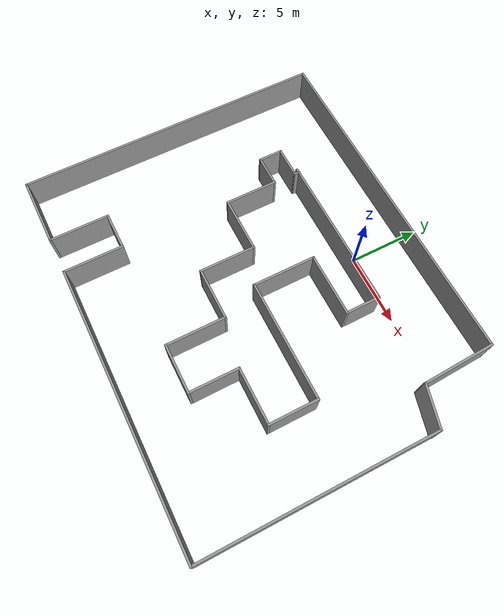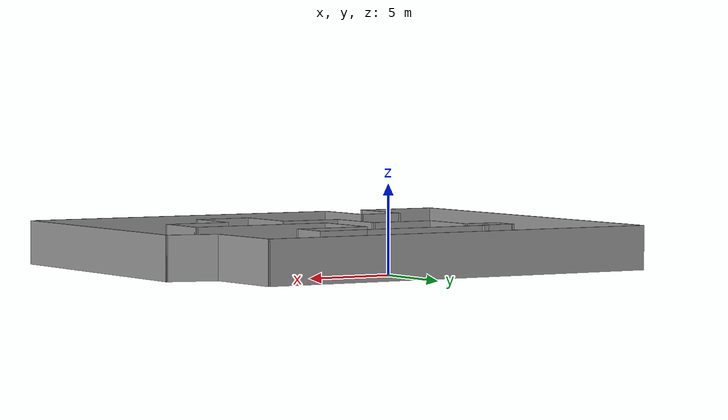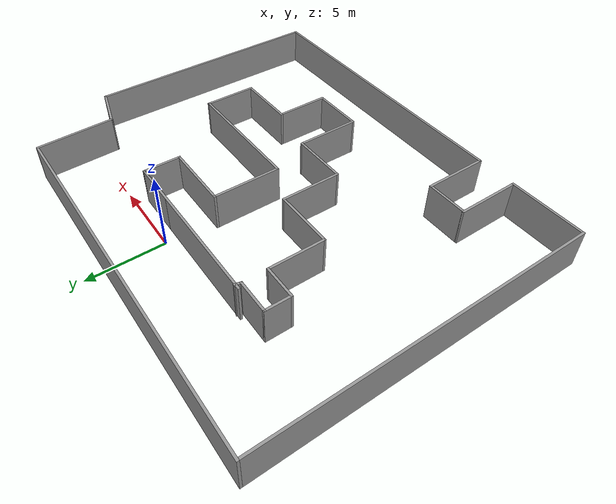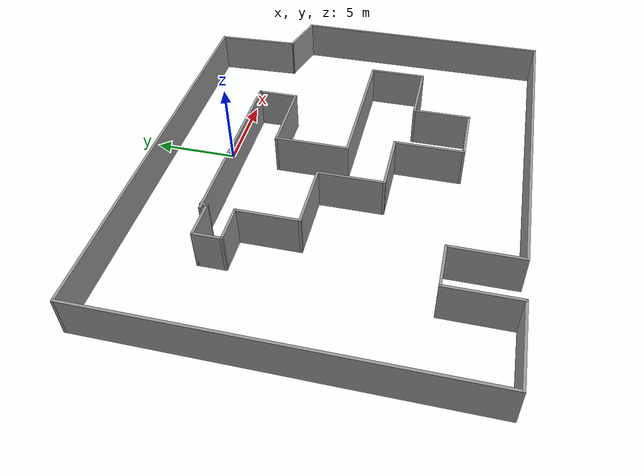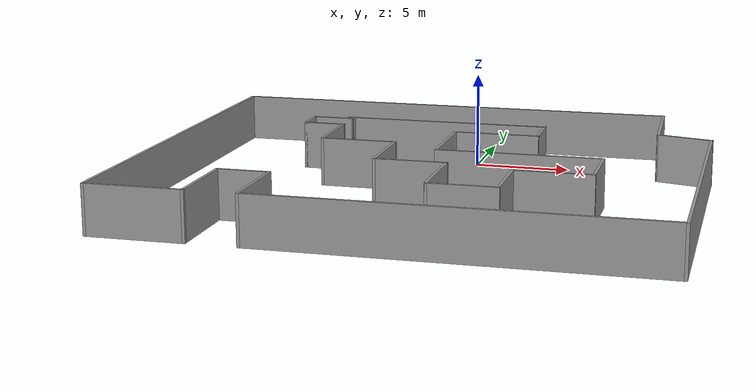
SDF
<?xml version='1.0'?>
<sdf version='1.7'>
  <model name='hebab'>
    <pose>-0.873472 -7.20371 0 0 -0 0</pose>
    <link name='Wall_1'>
      <collision name='Wall_1_Collision'>
        <geometry>
          <box>
            <size>3 0.15 2.5</size>
          </box>
        </geometry>
        <pose>0 0 1.25 0 -0 0</pose>
      </collision>
      <visual name='Wall_1_Visual'>
        <pose>0 0 1.25 0 -0 0</pose>
        <geometry>
          <box>
            <size>3 0.15 2.5</size>
          </box>
        </geometry>
        <material>
          <script>
            <uri>file://media/materials/scripts/gazebo.material</uri>
            <name>Gazebo/Grey</name>
          </script>
          <ambient>1 1 1 1</ambient>
        </material>
        <meta>
          <layer>0</layer>
        </meta>
      </visual>
      <pose>3.26847 6.38371 0 0 -0 0</pose>
    </link>
    <link name='Wall_10'>
      <collision name='Wall_10_Collision'>
        <geometry>
          <box>
            <size>3.5 0.15 2.5</size>
          </box>
        </geometry>
        <pose>0 0 1.25 0 -0 0</pose>
      </collision>
      <visual name='Wall_10_Visual'>
        <pose>0 0 1.25 0 -0 0</pose>
        <geometry>
          <box>
            <size>3.5 0.15 2.5</size>
          </box>
        </geometry>
        <material>
          <script>
            <uri>file://media/materials/scripts/gazebo.material</uri>
            <name>Gazebo/Grey</name>
          </script>
          <ambient>1 1 1 1</ambient>
        </material>
        <meta>
          <layer>0</layer>
        </meta>
      </visual>
      <pose>8.69347 -1.99129 0 0 -0 -1.5708</pose>
    </link>
    <link name='Wall_12'>
      <collision name='Wall_12_Collision'>
        <geometry>
          <box>
            <size>4 0.15 2.5</size>
          </box>
        </geometry>
        <pose>0 0 1.25 0 -0 0</pose>
      </collision>
      <visual name='Wall_12_Visual'>
        <pose>0 0 1.25 0 -0 0</pose>
        <geometry>
          <box>
            <size>4 0.15 2.5</size>
          </box>
        </geometry>
        <material>
          <script>
            <uri>file://media/materials/scripts/gazebo.material</uri>
            <name>Gazebo/Grey</name>
          </script>
          <ambient>1 1 1 1</ambient>
        </material>
        <meta>
          <layer>0</layer>
        </meta>
      </visual>
      <pose>6.76847 -3.66629 0 0 -0 3.14159</pose>
    </link>
    <link name='Wall_14'>
      <collision name='Wall_14_Collision'>
        <geometry>
          <box>
            <size>3.55 0.15 2.5</size>
          </box>
        </geometry>
        <pose>0 0 1.25 0 -0 0</pose>
      </collision>
      <visual name='Wall_14_Visual'>
        <pose>0 0 1.25 0 -0 0</pose>
        <geometry>
          <box>
            <size>3.55 0.15 2.5</size>
          </box>
        </geometry>
        <material>
          <script>
            <uri>file://media/materials/scripts/gazebo.material</uri>
            <name>Gazebo/Grey</name>
          </script>
          <ambient>1 1 1 1</ambient>
        </material>
        <meta>
          <layer>0</layer>
        </meta>
      </visual>
      <pose>4.84347 -5.36629 0 0 -0 -1.5708</pose>
    </link>
    <link name='Wall_16'>
      <collision name='Wall_16_Collision'>
        <geometry>
          <box>
            <size>3.5 0.15 2.5</size>
          </box>
        </geometry>
        <pose>0 0 1.25 0 -0 0</pose>
      </collision>
      <visual name='Wall_16_Visual'>
        <pose>0 0 1.25 0 -0 0</pose>
        <geometry>
          <box>
            <size>3.5 0.15 2.5</size>
          </box>
        </geometry>
        <material>
          <script>
            <uri>file://media/materials/scripts/gazebo.material</uri>
            <name>Gazebo/Grey</name>
          </script>
          <ambient>1 1 1 1</ambient>
        </material>
        <meta>
          <layer>0</layer>
        </meta>
      </visual>
      <pose>3.16847 -7.06629 0 0 -0 3.14159</pose>
    </link>
    <link name='Wall_18'>
      <collision name='Wall_18_Collision'>
        <geometry>
          <box>
            <size>4.25 0.15 2.5</size>
          </box>
        </geometry>
        <pose>0 0 1.25 0 -0 0</pose>
      </collision>
      <visual name='Wall_18_Visual'>
        <pose>0 0 1.25 0 -0 0</pose>
        <geometry>
          <box>
            <size>4.25 0.15 2.5</size>
          </box>
        </geometry>
        <material>
          <script>
            <uri>file://media/materials/scripts/gazebo.material</uri>
            <name>Gazebo/Grey</name>
          </script>
          <ambient>1 1 1 1</ambient>
        </material>
        <meta>
          <layer>0</layer>
        </meta>
      </visual>
      <pose>1.49347 -5.01629 0 0 -0 1.5708</pose>
    </link>
    <link name='Wall_2'>
      <collision name='Wall_2_Collision'>
        <geometry>
          <box>
            <size>11 0.15 2.5</size>
          </box>
        </geometry>
        <pose>0 0 1.25 0 -0 0</pose>
      </collision>
      <visual name='Wall_2_Visual'>
        <pose>0 0 1.25 0 -0 0</pose>
        <geometry>
          <box>
            <size>11 0.15 2.5</size>
          </box>
        </geometry>
        <material>
          <script>
            <uri>file://media/materials/scripts/gazebo.material</uri>
            <name>Gazebo/Grey</name>
          </script>
          <ambient>1 1 1 1</ambient>
        </material>
        <meta>
          <layer>0</layer>
        </meta>
      </visual>
      <pose>-0.731528 6.38371 0 0 -0 3.14159</pose>
    </link>
    <link name='Wall_20'>
      <collision name='Wall_20_Collision'>
        <geometry>
          <box>
            <size>3.75 0.15 2.5</size>
          </box>
        </geometry>
        <pose>0 0 1.25 0 -0 0</pose>
      </collision>
      <visual name='Wall_20_Visual'>
        <pose>0 0 1.25 0 -0 0</pose>
        <geometry>
          <box>
            <size>3.75 0.15 2.5</size>
          </box>
        </geometry>
        <material>
          <script>
            <uri>file://media/materials/scripts/gazebo.material</uri>
            <name>Gazebo/Grey</name>
          </script>
          <ambient>1 1 1 1</ambient>
        </material>
        <meta>
          <layer>0</layer>
        </meta>
      </visual>
      <pose>-0.306528 -2.96629 0 0 -0 3.14159</pose>
    </link>
    <link name='Wall_22'>
      <collision name='Wall_22_Collision'>
        <geometry>
          <box>
            <size>4 0.15 2.5</size>
          </box>
        </geometry>
        <pose>0 0 1.25 0 -0 0</pose>
      </collision>
      <visual name='Wall_22_Visual'>
        <pose>0 0 1.25 0 -0 0</pose>
        <geometry>
          <box>
            <size>4 0.15 2.5</size>
          </box>
        </geometry>
        <material>
          <script>
            <uri>file://media/materials/scripts/gazebo.material</uri>
            <name>Gazebo/Grey</name>
          </script>
          <ambient>1 1 1 1</ambient>
        </material>
        <meta>
          <layer>0</layer>
        </meta>
      </visual>
      <pose>-2.10653 -1.04129 0 0 -0 1.5708</pose>
    </link>
    <link name='Wall_24'>
      <collision name='Wall_24_Collision'>
        <geometry>
          <box>
            <size>4 0.15 2.5</size>
          </box>
        </geometry>
        <pose>0 0 1.25 0 -0 0</pose>
      </collision>
      <visual name='Wall_24_Visual'>
        <pose>0 0 1.25 0 -0 0</pose>
        <geometry>
          <box>
            <size>4 0.15 2.5</size>
          </box>
        </geometry>
        <material>
          <script>
            <uri>file://media/materials/scripts/gazebo.material</uri>
            <name>Gazebo/Grey</name>
          </script>
          <ambient>1 1 1 1</ambient>
        </material>
        <meta>
          <layer>0</layer>
        </meta>
      </visual>
      <pose>-4.03153 0.883709 0 0 -0 3.14159</pose>
    </link>
    <link name='Wall_26'>
      <collision name='Wall_26_Collision'>
        <geometry>
          <box>
            <size>3.75 0.15 2.5</size>
          </box>
        </geometry>
        <pose>0 0 1.25 0 -0 0</pose>
      </collision>
      <visual name='Wall_26_Visual'>
        <pose>0 0 1.25 0 -0 0</pose>
        <geometry>
          <box>
            <size>3.75 0.15 2.5</size>
          </box>
        </geometry>
        <material>
          <script>
            <uri>file://media/materials/scripts/gazebo.material</uri>
            <name>Gazebo/Grey</name>
          </script>
          <ambient>1 1 1 1</ambient>
        </material>
        <meta>
          <layer>0</layer>
        </meta>
      </visual>
      <pose>-5.95653 2.68371 0 0 -0 1.5708</pose>
    </link>
    <link name='Wall_27'>
      <collision name='Wall_27_Collision'>
        <geometry>
          <box>
            <size>2.25 0.15 2.5</size>
          </box>
        </geometry>
        <pose>0 0 1.25 0 -0 0</pose>
      </collision>
      <visual name='Wall_27_Visual'>
        <pose>0 0 1.25 0 -0 0</pose>
        <geometry>
          <box>
            <size>2.25 0.15 2.5</size>
          </box>
        </geometry>
        <material>
          <script>
            <uri>file://media/materials/scripts/gazebo.material</uri>
            <name>Gazebo/Grey</name>
          </script>
          <ambient>1 1 1 1</ambient>
        </material>
        <meta>
          <layer>0</layer>
        </meta>
      </visual>
      <pose>-7.00653 4.48371 0 0 -0 3.14159</pose>
    </link>
    <link name='Wall_28'>
      <collision name='Wall_28_Collision'>
        <geometry>
          <box>
            <size>1.75 0.15 2.5</size>
          </box>
        </geometry>
        <pose>0 0 1.25 0 -0 0</pose>
      </collision>
      <visual name='Wall_28_Visual'>
        <pose>0 0 1.25 0 -0 0</pose>
        <geometry>
          <box>
            <size>1.75 0.15 2.5</size>
          </box>
        </geometry>
        <material>
          <script>
            <uri>file://media/materials/scripts/gazebo.material</uri>
            <name>Gazebo/Grey</name>
          </script>
          <ambient>1 1 1 1</ambient>
        </material>
        <meta>
          <layer>0</layer>
        </meta>
      </visual>
      <pose>-8.05653 5.28371 0 0 -0 1.5708</pose>
    </link>
    <link name='Wall_29'>
      <collision name='Wall_29_Collision'>
        <geometry>
          <box>
            <size>2.25 0.15 2.5</size>
          </box>
        </geometry>
        <pose>0 0 1.25 0 -0 0</pose>
      </collision>
      <visual name='Wall_29_Visual'>
        <pose>0 0 1.25 0 -0 0</pose>
        <geometry>
          <box>
            <size>2.25 0.15 2.5</size>
          </box>
        </geometry>
        <material>
          <script>
            <uri>file://media/materials/scripts/gazebo.material</uri>
            <name>Gazebo/Grey</name>
          </script>
          <ambient>1 1 1 1</ambient>
        </material>
        <meta>
          <layer>0</layer>
        </meta>
      </visual>
      <pose>-7.00653 6.08371 0 0 -0 0</pose>
    </link>
    <link name='Wall_30'>
      <collision name='Wall_30_Collision'>
        <geometry>
          <box>
            <size>0.5 0.15 2.5</size>
          </box>
        </geometry>
        <pose>0 0 1.25 0 -0 0</pose>
      </collision>
      <visual name='Wall_30_Visual'>
        <pose>0 0 1.25 0 -0 0</pose>
        <geometry>
          <box>
            <size>0.5 0.15 2.5</size>
          </box>
        </geometry>
        <material>
          <script>
            <uri>file://media/materials/scripts/gazebo.material</uri>
            <name>Gazebo/Grey</name>
          </script>
          <ambient>1 1 1 1</ambient>
        </material>
        <meta>
          <layer>0</layer>
        </meta>
      </visual>
      <pose>-5.91123 6.25275 0 0 -0 1.309</pose>
    </link>
    <link name='Wall_32'>
      <collision name='Wall_32_Collision'>
        <geometry>
          <box>
            <size>24.25 0.15 2.5</size>
          </box>
        </geometry>
        <pose>0 0 1.25 0 -0 0</pose>
      </collision>
      <visual name='Wall_32_Visual'>
        <pose>0 0 1.25 0 -0 0</pose>
        <geometry>
          <box>
            <size>24.25 0.15 2.5</size>
          </box>
        </geometry>
        <material>
          <script>
            <uri>file://media/materials/scripts/gazebo.material</uri>
            <name>Gazebo/Grey</name>
          </script>
          <ambient>1 1 1 1</ambient>
        </material>
        <meta>
          <layer>0</layer>
        </meta>
      </visual>
      <pose>-1.48343 10.9236 0 0 -0 3.14159</pose>
    </link>
    <link name='Wall_33'>
      <collision name='Wall_33_Collision'>
        <geometry>
          <box>
            <size>22 0.15 2.5</size>
          </box>
        </geometry>
        <pose>0 0 1.25 0 -0 0</pose>
      </collision>
      <visual name='Wall_33_Visual'>
        <pose>0 0 1.25 0 -0 0</pose>
        <geometry>
          <box>
            <size>22 0.15 2.5</size>
          </box>
        </geometry>
        <material>
          <script>
            <uri>file://media/materials/scripts/gazebo.material</uri>
            <name>Gazebo/Grey</name>
          </script>
          <ambient>1 1 1 1</ambient>
        </material>
        <meta>
          <layer>0</layer>
        </meta>
      </visual>
      <pose>-13.5334 -0.001444 0 0 -0 -1.5708</pose>
    </link>
    <link name='Wall_34'>
      <collision name='Wall_34_Collision'>
        <geometry>
          <box>
            <size>5 0.15 2.5</size>
          </box>
        </geometry>
        <pose>0 0 1.25 0 -0 0</pose>
      </collision>
      <visual name='Wall_34_Visual'>
        <pose>0 0 1.25 0 -0 0</pose>
        <geometry>
          <box>
            <size>5 0.15 2.5</size>
          </box>
        </geometry>
        <material>
          <script>
            <uri>file://media/materials/scripts/gazebo.material</uri>
            <name>Gazebo/Grey</name>
          </script>
          <ambient>1 1 1 1</ambient>
        </material>
        <meta>
          <layer>0</layer>
        </meta>
      </visual>
      <pose>-11.1084 -10.9264 0 0 -0 0</pose>
    </link>
    <link name='Wall_35'>
      <collision name='Wall_35_Collision'>
        <geometry>
          <box>
            <size>4.25 0.15 2.5</size>
          </box>
        </geometry>
        <pose>0 0 1.25 0 -0 0</pose>
      </collision>
      <visual name='Wall_35_Visual'>
        <pose>0 0 1.25 0 -0 0</pose>
        <geometry>
          <box>
            <size>4.25 0.15 2.5</size>
          </box>
        </geometry>
        <material>
          <script>
            <uri>file://media/materials/scripts/gazebo.material</uri>
            <name>Gazebo/Grey</name>
          </script>
          <ambient>1 1 1 1</ambient>
        </material>
        <meta>
          <layer>0</layer>
        </meta>
      </visual>
      <pose>-8.68343 -8.87644 0 0 -0 1.5708</pose>
    </link>
    <link name='Wall_36'>
      <collision name='Wall_36_Collision'>
        <geometry>
          <box>
            <size>2.75 0.15 2.5</size>
          </box>
        </geometry>
        <pose>0 0 1.25 0 -0 0</pose>
      </collision>
      <visual name='Wall_36_Visual'>
        <pose>0 0 1.25 0 -0 0</pose>
        <geometry>
          <box>
            <size>2.75 0.15 2.5</size>
          </box>
        </geometry>
        <material>
          <script>
            <uri>file://media/materials/scripts/gazebo.material</uri>
            <name>Gazebo/Grey</name>
          </script>
          <ambient>1 1 1 1</ambient>
        </material>
        <meta>
          <layer>0</layer>
        </meta>
      </visual>
      <pose>-7.38343 -6.82644 0 0 -0 0</pose>
    </link>
    <link name='Wall_37'>
      <collision name='Wall_37_Collision'>
        <geometry>
          <box>
            <size>4.25 0.15 2.5</size>
          </box>
        </geometry>
        <pose>0 0 1.25 0 -0 0</pose>
      </collision>
      <visual name='Wall_37_Visual'>
        <pose>0 0 1.25 0 -0 0</pose>
        <geometry>
          <box>
            <size>4.25 0.15 2.5</size>
          </box>
        </geometry>
        <material>
          <script>
            <uri>file://media/materials/scripts/gazebo.material</uri>
            <name>Gazebo/Grey</name>
          </script>
          <ambient>1 1 1 1</ambient>
        </material>
        <meta>
          <layer>0</layer>
        </meta>
      </visual>
      <pose>-6.08343 -8.87644 0 0 -0 -1.5708</pose>
    </link>
    <link name='Wall_38'>
      <collision name='Wall_38_Collision'>
        <geometry>
          <box>
            <size>19.75 0.15 2.5</size>
          </box>
        </geometry>
        <pose>0 0 1.25 0 -0 0</pose>
      </collision>
      <visual name='Wall_38_Visual'>
        <pose>0 0 1.25 0 -0 0</pose>
        <geometry>
          <box>
            <size>19.75 0.15 2.5</size>
          </box>
        </geometry>
        <material>
          <script>
            <uri>file://media/materials/scripts/gazebo.material</uri>
            <name>Gazebo/Grey</name>
          </script>
          <ambient>1 1 1 1</ambient>
        </material>
        <meta>
          <layer>0</layer>
        </meta>
      </visual>
      <pose>3.71657 -10.9264 0 0 -0 0</pose>
    </link>
    <link name='Wall_39'>
      <collision name='Wall_39_Collision'>
        <geometry>
          <box>
            <size>16.25 0.15 2.5</size>
          </box>
        </geometry>
        <pose>0 0 1.25 0 -0 0</pose>
      </collision>
      <visual name='Wall_39_Visual'>
        <pose>0 0 1.25 0 -0 0</pose>
        <geometry>
          <box>
            <size>16.25 0.15 2.5</size>
          </box>
        </geometry>
        <material>
          <script>
            <uri>file://media/materials/scripts/gazebo.material</uri>
            <name>Gazebo/Grey</name>
          </script>
          <ambient>1 1 1 1</ambient>
        </material>
        <meta>
          <layer>0</layer>
        </meta>
      </visual>
      <pose>13.5166 -2.87644 0 0 -0 1.5708</pose>
    </link>
    <link name='Wall_4'>
      <collision name='Wall_4_Collision'>
        <geometry>
          <box>
            <size>2.5 0.15 2.5</size>
          </box>
        </geometry>
        <pose>0 0 1.25 0 -0 0</pose>
      </collision>
      <visual name='Wall_4_Visual'>
        <pose>0 0 1.25 0 -0 0</pose>
        <geometry>
          <box>
            <size>2.5 0.15 2.5</size>
          </box>
        </geometry>
        <material>
          <script>
            <uri>file://media/materials/scripts/gazebo.material</uri>
            <name>Gazebo/Grey</name>
          </script>
          <ambient>1 1 1 1</ambient>
        </material>
        <meta>
          <layer>0</layer>
        </meta>
      </visual>
      <pose>4.69347 5.20871 0 0 -0 -1.5708</pose>
    </link>
    <link name='Wall_40'>
      <collision name='Wall_40_Collision'>
        <geometry>
          <box>
            <size>3 0.15 2.5</size>
          </box>
        </geometry>
        <pose>0 0 1.25 0 -0 0</pose>
      </collision>
      <visual name='Wall_40_Visual'>
        <pose>0 0 1.25 0 -0 0</pose>
        <geometry>
          <box>
            <size>3 0.15 2.5</size>
          </box>
        </geometry>
        <material>
          <script>
            <uri>file://media/materials/scripts/gazebo.material</uri>
            <name>Gazebo/Grey</name>
          </script>
          <ambient>1 1 1 1</ambient>
        </material>
        <meta>
          <layer>0</layer>
        </meta>
      </visual>
      <pose>12.1401 5.54237 0 0 -0 2.87979</pose>
    </link>
    <link name='Wall_41'>
      <collision name='Wall_41_Collision'>
        <geometry>
          <box>
            <size>5.16624 0.15 2.5</size>
          </box>
        </geometry>
        <pose>0 0 1.25 0 -0 0</pose>
      </collision>
      <visual name='Wall_41_Visual'>
        <pose>0 0 1.25 0 -0 0</pose>
        <geometry>
          <box>
            <size>5.16624 0.15 2.5</size>
          </box>
        </geometry>
        <material>
          <script>
            <uri>file://media/materials/scripts/gazebo.material</uri>
            <name>Gazebo/Grey</name>
          </script>
          <ambient>1 1 1 1</ambient>
        </material>
        <meta>
          <layer>0</layer>
        </meta>
      </visual>
      <pose>10.6651 8.41737 0 0 -0 1.6101</pose>
    </link>
    <link name='Wall_5'>
      <collision name='Wall_5_Collision'>
        <geometry>
          <box>
            <size>4.5 0.15 2.5</size>
          </box>
        </geometry>
        <pose>0 0 1.25 0 -0 0</pose>
      </collision>
      <visual name='Wall_5_Visual'>
        <pose>0 0 1.25 0 -0 0</pose>
        <geometry>
          <box>
            <size>4.5 0.15 2.5</size>
          </box>
        </geometry>
        <material>
          <script>
            <uri>file://media/materials/scripts/gazebo.material</uri>
            <name>Gazebo/Grey</name>
          </script>
          <ambient>1 1 1 1</ambient>
        </material>
        <meta>
          <layer>0</layer>
        </meta>
      </visual>
      <pose>2.51847 4.03371 0 0 -0 3.14159</pose>
    </link>
    <link name='Wall_6'>
      <collision name='Wall_6_Collision'>
        <geometry>
          <box>
            <size>4.5 0.15 2.5</size>
          </box>
        </geometry>
        <pose>0 0 1.25 0 -0 0</pose>
      </collision>
      <visual name='Wall_6_Visual'>
        <pose>0 0 1.25 0 -0 0</pose>
        <geometry>
          <box>
            <size>4.5 0.15 2.5</size>
          </box>
        </geometry>
        <material>
          <script>
            <uri>file://media/materials/scripts/gazebo.material</uri>
            <name>Gazebo/Grey</name>
          </script>
          <ambient>1 1 1 1</ambient>
        </material>
        <meta>
          <layer>0</layer>
        </meta>
      </visual>
      <pose>0.343472 1.85871 0 0 -0 -1.5708</pose>
    </link>
    <link name='Wall_8'>
      <collision name='Wall_8_Collision'>
        <geometry>
          <box>
            <size>8.5 0.15 2.5</size>
          </box>
        </geometry>
        <pose>0 0 1.25 0 -0 0</pose>
      </collision>
      <visual name='Wall_8_Visual'>
        <pose>0 0 1.25 0 -0 0</pose>
        <geometry>
          <box>
            <size>8.5 0.15 2.5</size>
          </box>
        </geometry>
        <material>
          <script>
            <uri>file://media/materials/scripts/gazebo.material</uri>
            <name>Gazebo/Grey</name>
          </script>
          <ambient>1 1 1 1</ambient>
        </material>
        <meta>
          <layer>0</layer>
        </meta>
      </visual>
      <pose>4.51847 -0.316291 0 0 -0 0</pose>
    </link>
    <static>1</static>
  </model>
</sdf>
